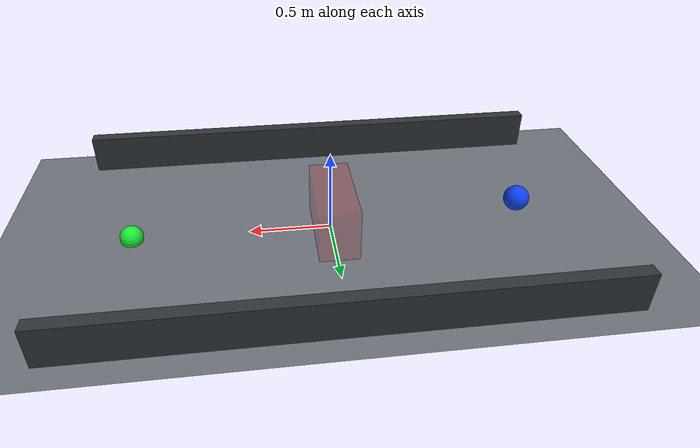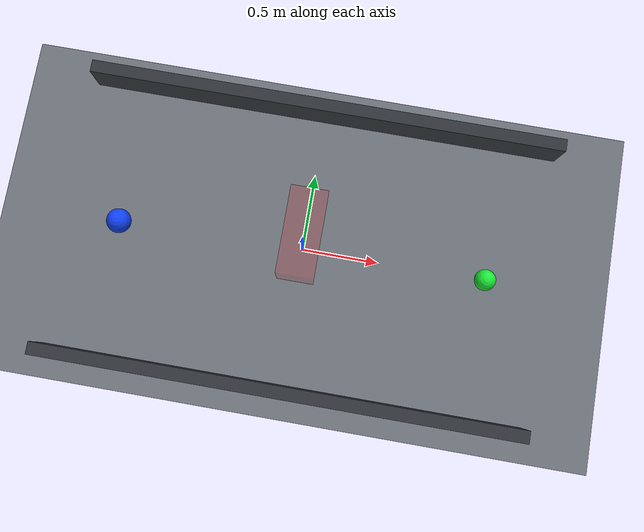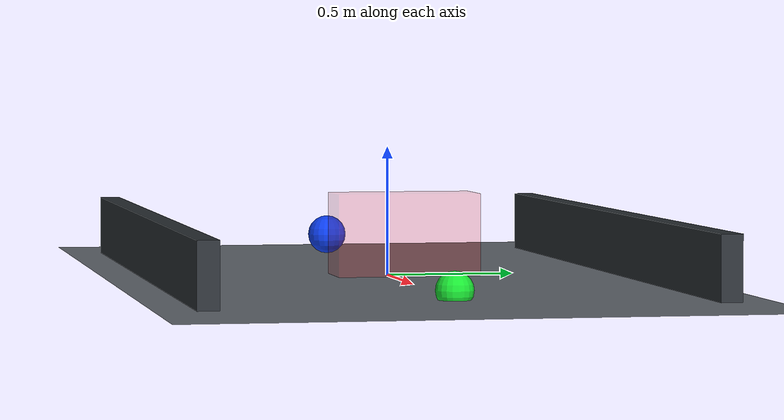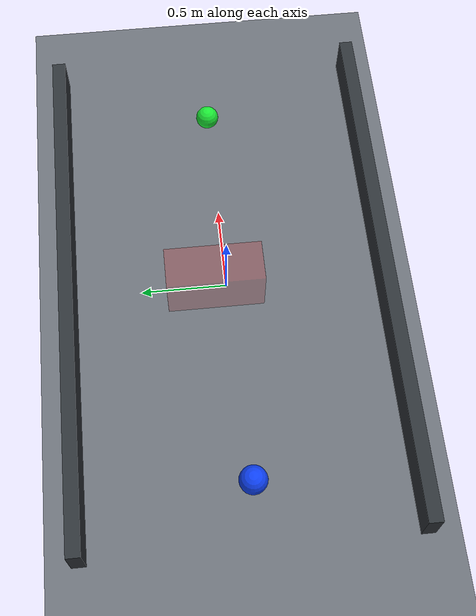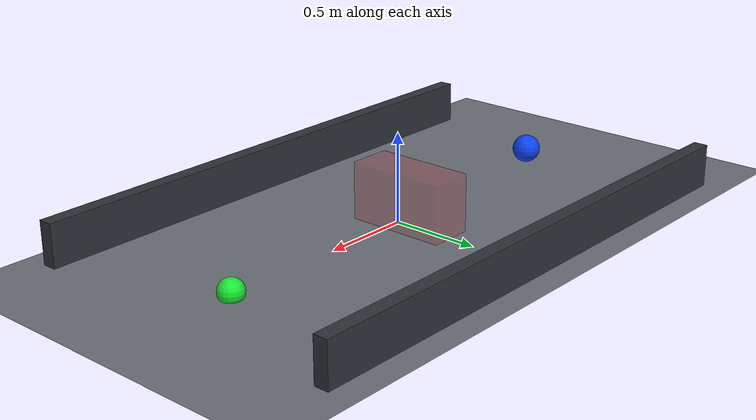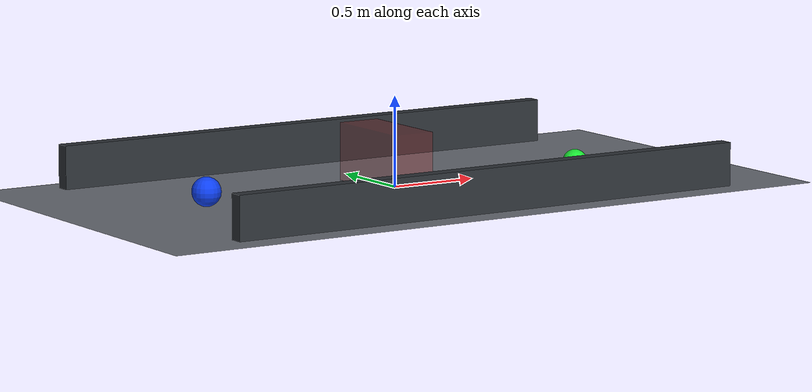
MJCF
<mujoco model="opaque_glass_transfer">
  <option timestep="0.02" gravity="0 0 0" integrator="implicitfast"/>
  <visual><global offwidth="96" offheight="96"/><quality shadowsize="1024"/></visual>
  <worldbody>
    <light pos="-1.5 -1.0 3.0" dir="0.3 0.2 -1" diffuse="0.75 0.75 0.75"/>
    <light pos="1.5 1.0 2.5" dir="-0.3 -0.2 -1" diffuse="0.35 0.35 0.35"/>
    <camera name="overhead" pos="0 0 3.2" xyaxes="1 0 0 0 1 0" fovy="42"/>
    <geom name="floor" type="plane" size="2 1.1 0.05" rgba="0.42 0.44 0.47 1" contype="0" conaffinity="0"/>
    <geom name="wall_top" type="box" pos="0 0.92 0.12" size="1.55 0.04 0.12" rgba="0.18 0.2 0.22 1"/>
    <geom name="wall_bottom" type="box" pos="0 -0.92 0.12" size="1.55 0.04 0.12" rgba="0.18 0.2 0.22 1"/>
    <geom name="obstacle" type="box" pos="-0.012302660876967906 0.06890076100965968 0.16" size="0.12 0.28 0.16" rgba="0.86 0.05 0.04 0.08" friction="0.9 0.02 0.002" contype="1" conaffinity="1"/>
    <body name="robot" pos="-1.2 -0.028320328939187914 0.09">
      <joint name="x" type="slide" axis="1 0 0" damping="2"/>
      <joint name="y" type="slide" axis="0 1 0" damping="2"/>
      <geom name="robot_geom" type="sphere" size="0.08" rgba="0.05 0.25 0.95 1" mass="0.45" friction="0.8 0.02 0.002"/>
    </body>
    <site name="goal" pos="1.2 0.007080082234796978 0.03" size="0.07" rgba="0.1 0.9 0.2 1"/>
  </worldbody>
  <actuator>
    <motor name="fx" joint="x" gear="1" ctrlrange="-5 5" ctrllimited="true"/>
    <motor name="fy" joint="y" gear="1" ctrlrange="-5 5" ctrllimited="true"/>
  </actuator>
</mujoco>
